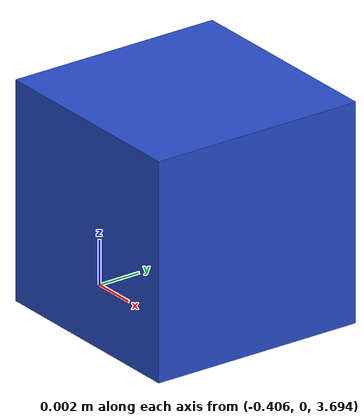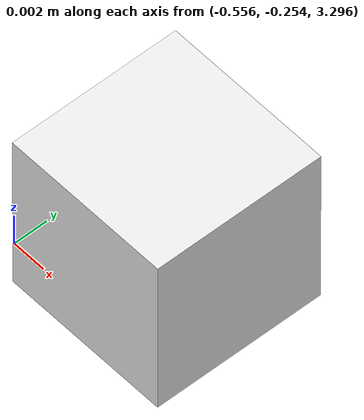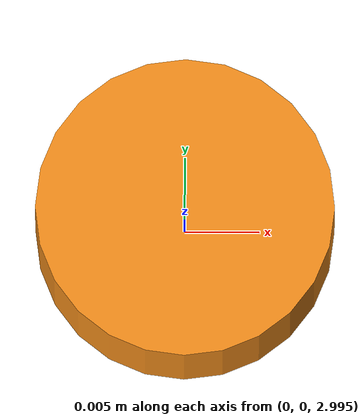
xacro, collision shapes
<?xml version="1.0" ?>

<robot name="simple_example" xmlns:xacro="http://www.ros.org/wiki/xacro">

<xacro:include filename="$(find mrm_description)/urdf/materials.xacro" />

<link name="world"/>

<joint name="fixed" type="fixed">
  <parent link="world"/>
  <child link="base_link"/>
</joint>

  <link name="base_link">
    <collision>
      <origin xyz="0 0 0.75" rpy="-3.1416 0 0"/>
      <geometry>
    <box size="0.01 0.01 0.01"/>
         <!--mesh filename="package://mrm_description/urdf/robot_arm_stl/basecone.STL" scale="0.01 0.01 0.01"/-->
      </geometry>
    </collision>

    <visual>
      <origin xyz="0 0 0.75" rpy="-3.1416 0 0"/>
      <geometry>
        <mesh filename="package://mrm_description/urdf/robot_arm_stl/basecone.STL" scale="0.01 0.01 0.01"/>
      </geometry>
    </visual>

    <inertial>
      <mass value="10" />
      <origin xyz="0 0 0.75" rpy="-3.1416 0 0"/>
      <inertia ixx="1e-6" ixy="0" ixz="0" iyy="1e-6" iyz="0" izz="1e-6" />
    </inertial>
  </link>

    <joint name="joint1" type="continuous">
        <axis xyz="0 0 1" />
        <limit effort="1000.0" lower="-3.14" upper="3.14" velocity="0.5" />
        <origin rpy="0 0 0" xyz="0 0 2"/>
        <parent link="base_link"/>
        <child link="link1"/>
        <!--dynamics damping="0.7"/-->
    </joint>

    <link name="link1">
        <visual>
            <origin rpy="0 0 0" xyz="0 0 1"/>
            <geometry>
                <cylinder radius="0.35" length="0.4"/>
            </geometry>
            <material name="orange"/>
        </visual>

        <collision>
          <origin rpy="0 0 0" xyz="0 0 1"/>
            <geometry>
                <cylinder radius="0.01" length="0.01"/>
                <!--cylinder radius="0.35" length="0.4"/-->
            </geometry>
        </collision>

        <inertial>
            <mass value="2.0" />
            <origin rpy="0 0 0" xyz="0 0 1"/>
            <inertia ixx="0.0002835" ixy="0.0" ixz="0.0" iyy="0.0002835" iyz="0.0" izz="0.000324" />
        </inertial>
    </link>

    <joint name="joint2" type="fixed">
        <axis xyz="0 0 0" />
        <!--limit effort="1000.0" lower="-3.14" upper="3.14" velocity="0.5" /-->
        <origin rpy="0 0 0" xyz="0 0 0.5"/>
        <parent link="link1"/>
        <child link="halter1"/>
    </joint>

  <link name="halter1">
    <collision>
      <origin xyz="-0.55 -0.25 0.8" rpy="0 0 0"/>
      <geometry>
          <box size="0.01 0.01 0.01"/>
          <!--mesh filename="package://mrm_description/urdf/robot_arm_stl/shoulderplate.STL" scale="0.01 0.01 0.01"/-->
      </geometry>

    </collision>

    <visual>
      <origin xyz="-0.55 -0.25 0.8" rpy="0 0 0"/>
      <geometry>
        <mesh filename="package://mrm_description/urdf/robot_arm_stl/shoulderplate.STL" scale="0.01 0.01 0.01"/>
      </geometry>
      <material name="white"/>
    </visual>

    <inertial>
      <mass value="0.01" />
      <origin xyz="-0.55 -0.25 0.8" rpy="0 0 0"/>
      <inertia ixx="0.0002835" ixy="0.0" ixz="0.0" iyy="0.0002835" iyz="0.0" izz="0.000324" />
    </inertial>
  </link>

  <joint name="halter1_zwerg" type="fixed">
        <axis xyz="0 0 1" />
        <!--limit effort="1000.0" lower="-3.14" upper="3.14" velocity="0.5" /-->
        <origin rpy="0 0 0" xyz="-0.4 0 0.2"/>
        <parent link="halter1"/>
        <child link="zwerg"/>
  </joint>

 <link name="zwerg">
    <collision>
         <origin xyz="0 0 1" rpy="0 0 0"/>
      <geometry>
          <box size="0.01 0.01 0.01"/>
          <!--mesh filename="package://mrm_description/urdf/robot_arm_stl/zwerg.STL" scale="0.01 0.01 0.01"/-->
      </geometry>

    </collision>

    <visual>
      <origin xyz="0 0 1" rpy="0 0 0"/>
      <geometry>
        <mesh filename="package://mrm_description/urdf/robot_arm_stl/zwerg.STL" scale="0.01 0.01 0.01"/>
      </geometry>
      <material name="blue"/>
    </visual>

    <inertial>
      <mass value="0.01" />
      <origin xyz="0 0 1" rpy="0 0 0"/>
      <inertia ixx="0.0002835" ixy="0.0" ixz="0.0" iyy="0.0002835" iyz="0.0" izz="0.000324" />
    </inertial>

  </link>

   <!-- ROS Control plugin for Gazebo -->
   <gazebo>
    <plugin name="gazebo_ros_control" filename="libgazebo_ros_control.so">
	  <!--this is the namespace in the yaml file-->
      <robotNamespace>/simple_model</robotNamespace>

      <robotSimType>gazebo_ros_control/DefaultRobotHWSim</robotSimType>
      <legacyModeNS>true</legacyModeNS>
    </plugin>
  </gazebo>

  <transmission name="base_to_second_trans">
    <type>transmission_interface/SimpleTransmission</type>
    <actuator name="motor1">
      <mechanicalReduction>1</mechanicalReduction>
    </actuator>
    <joint name="joint1">

     <hardwareInterface>hardware_interface/EffortJointInterface</hardwareInterface>
    </joint>
  </transmission>

</robot>
